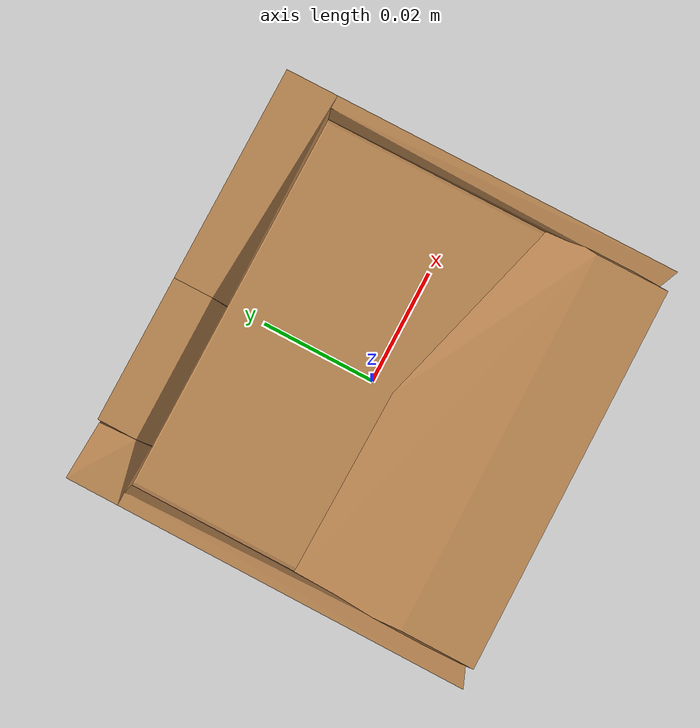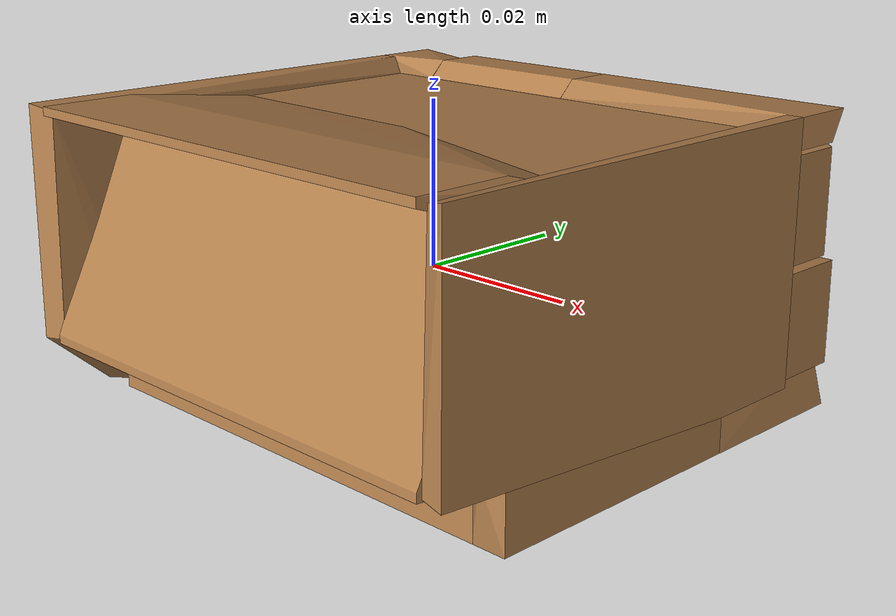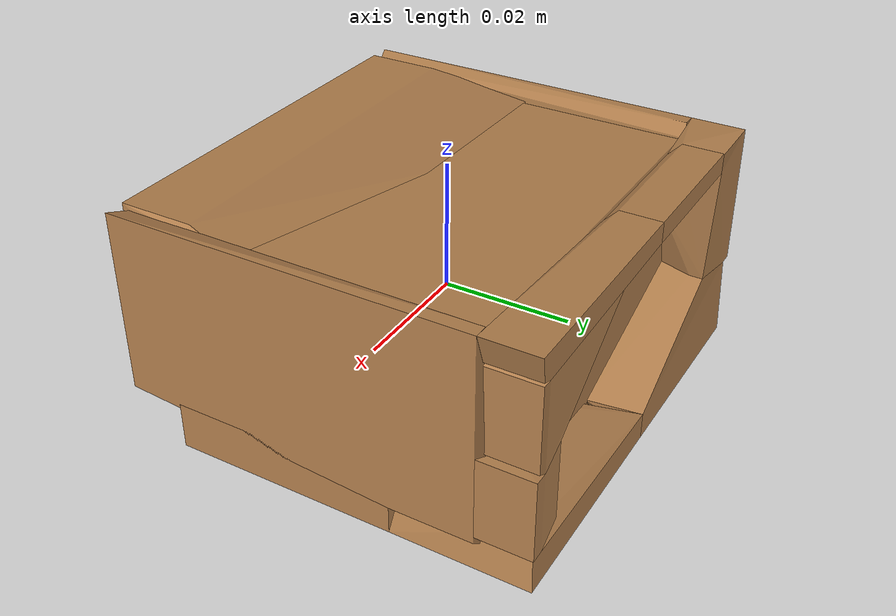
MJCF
<mujoco model="shapenet23-0">
  <asset>
    <mesh file="meshes/shapenet23-0/shapenet23-0_0.stl" name="shapenet23-0_0" scale="0.1 0.1 0.1"/>
    <mesh file="meshes/shapenet23-0/shapenet23-0_1.stl" name="shapenet23-0_1" scale="0.1 0.1 0.1"/>
    <mesh file="meshes/shapenet23-0/shapenet23-0_2.stl" name="shapenet23-0_2" scale="0.1 0.1 0.1"/>
    <mesh file="meshes/shapenet23-0/shapenet23-0_3.stl" name="shapenet23-0_3" scale="0.1 0.1 0.1"/>
    <mesh file="meshes/shapenet23-0/shapenet23-0_4.stl" name="shapenet23-0_4" scale="0.1 0.1 0.1"/>
    <mesh file="meshes/shapenet23-0/shapenet23-0_5.stl" name="shapenet23-0_5" scale="0.1 0.1 0.1"/>
    <mesh file="meshes/shapenet23-0/shapenet23-0_6.stl" name="shapenet23-0_6" scale="0.1 0.1 0.1"/>
    <mesh file="meshes/shapenet23-0/shapenet23-0_7.stl" name="shapenet23-0_7" scale="0.1 0.1 0.1"/>
    <mesh file="meshes/shapenet23-0/shapenet23-0_8.stl" name="shapenet23-0_8" scale="0.1 0.1 0.1"/>
    <mesh file="meshes/shapenet23-0/shapenet23-0_9.stl" name="shapenet23-0_9" scale="0.1 0.1 0.1"/>
    <mesh file="meshes/shapenet23-0/shapenet23-0_10.stl" name="shapenet23-0_10" scale="0.1 0.1 0.1"/>
    <mesh file="meshes/shapenet23-0/shapenet23-0_11.stl" name="shapenet23-0_11" scale="0.1 0.1 0.1"/>
    <mesh file="meshes/shapenet23-0/shapenet23-0_12.stl" name="shapenet23-0_12" scale="0.1 0.1 0.1"/>
    <mesh file="meshes/shapenet23-0/shapenet23-0_13.stl" name="shapenet23-0_13" scale="0.1 0.1 0.1"/>
    <mesh file="meshes/shapenet23-0/shapenet23-0_14.stl" name="shapenet23-0_14" scale="0.1 0.1 0.1"/>
    <mesh file="meshes/shapenet23-0/shapenet23-0_15.stl" name="shapenet23-0_15" scale="0.1 0.1 0.1"/>
    <mesh file="meshes/shapenet23-0/shapenet23-0_16.stl" name="shapenet23-0_16" scale="0.1 0.1 0.1"/>
    <mesh file="meshes/shapenet23-0/shapenet23-0_17.stl" name="shapenet23-0_17" scale="0.1 0.1 0.1"/>
    <mesh file="meshes/shapenet23-0/shapenet23-0_18.stl" name="shapenet23-0_18" scale="0.1 0.1 0.1"/>
    <mesh file="meshes/shapenet23-0/shapenet23-0_19.stl" name="shapenet23-0_19" scale="0.1 0.1 0.1"/>
    <texture file="../textures/dark-wood.png" type="2d" name="tex-darkwood"/>
    <material name="darkwood" reflectance="0.7" texrepeat="30 25" texture="tex-darkwood" texuniform="true"/>
  </asset>
  <worldbody>
    <body>
      <body name="collision">
        <geom pos="0 0 0" mesh="shapenet23-0_0" type="mesh" solimp="0.998 0.998 0.001" solref="0.001 1" density="100" friction="0.95 0.3 0.1" material="darkwood" group="1" condim="4"/>
        <geom pos="0 0 0" mesh="shapenet23-0_1" type="mesh" solimp="0.998 0.998 0.001" solref="0.001 1" density="100" friction="0.95 0.3 0.1" material="darkwood" group="1" condim="4"/>
        <geom pos="0 0 0" mesh="shapenet23-0_2" type="mesh" solimp="0.998 0.998 0.001" solref="0.001 1" density="100" friction="0.95 0.3 0.1" material="darkwood" group="1" condim="4"/>
        <geom pos="0 0 0" mesh="shapenet23-0_3" type="mesh" solimp="0.998 0.998 0.001" solref="0.001 1" density="100" friction="0.95 0.3 0.1" material="darkwood" group="1" condim="4"/>
        <geom pos="0 0 0" mesh="shapenet23-0_4" type="mesh" solimp="0.998 0.998 0.001" solref="0.001 1" density="100" friction="0.95 0.3 0.1" material="darkwood" group="1" condim="4"/>
        <geom pos="0 0 0" mesh="shapenet23-0_5" type="mesh" solimp="0.998 0.998 0.001" solref="0.001 1" density="100" friction="0.95 0.3 0.1" material="darkwood" group="1" condim="4"/>
        <geom pos="0 0 0" mesh="shapenet23-0_6" type="mesh" solimp="0.998 0.998 0.001" solref="0.001 1" density="100" friction="0.95 0.3 0.1" material="darkwood" group="1" condim="4"/>
        <geom pos="0 0 0" mesh="shapenet23-0_7" type="mesh" solimp="0.998 0.998 0.001" solref="0.001 1" density="100" friction="0.95 0.3 0.1" material="darkwood" group="1" condim="4"/>
        <geom pos="0 0 0" mesh="shapenet23-0_8" type="mesh" solimp="0.998 0.998 0.001" solref="0.001 1" density="100" friction="0.95 0.3 0.1" material="darkwood" group="1" condim="4"/>
        <geom pos="0 0 0" mesh="shapenet23-0_9" type="mesh" solimp="0.998 0.998 0.001" solref="0.001 1" density="100" friction="0.95 0.3 0.1" material="darkwood" group="1" condim="4"/>
        <geom pos="0 0 0" mesh="shapenet23-0_10" type="mesh" solimp="0.998 0.998 0.001" solref="0.001 1" density="100" friction="0.95 0.3 0.1" material="darkwood" group="1" condim="4"/>
        <geom pos="0 0 0" mesh="shapenet23-0_11" type="mesh" solimp="0.998 0.998 0.001" solref="0.001 1" density="100" friction="0.95 0.3 0.1" material="darkwood" group="1" condim="4"/>
        <geom pos="0 0 0" mesh="shapenet23-0_12" type="mesh" solimp="0.998 0.998 0.001" solref="0.001 1" density="100" friction="0.95 0.3 0.1" material="darkwood" group="1" condim="4"/>
        <geom pos="0 0 0" mesh="shapenet23-0_13" type="mesh" solimp="0.998 0.998 0.001" solref="0.001 1" density="100" friction="0.95 0.3 0.1" material="darkwood" group="1" condim="4"/>
        <geom pos="0 0 0" mesh="shapenet23-0_14" type="mesh" solimp="0.998 0.998 0.001" solref="0.001 1" density="100" friction="0.95 0.3 0.1" material="darkwood" group="1" condim="4"/>
        <geom pos="0 0 0" mesh="shapenet23-0_15" type="mesh" solimp="0.998 0.998 0.001" solref="0.001 1" density="100" friction="0.95 0.3 0.1" material="darkwood" group="1" condim="4"/>
        <geom pos="0 0 0" mesh="shapenet23-0_16" type="mesh" solimp="0.998 0.998 0.001" solref="0.001 1" density="100" friction="0.95 0.3 0.1" material="darkwood" group="1" condim="4"/>
        <geom pos="0 0 0" mesh="shapenet23-0_17" type="mesh" solimp="0.998 0.998 0.001" solref="0.001 1" density="100" friction="0.95 0.3 0.1" material="darkwood" group="1" condim="4"/>
        <geom pos="0 0 0" mesh="shapenet23-0_18" type="mesh" solimp="0.998 0.998 0.001" solref="0.001 1" density="100" friction="0.95 0.3 0.1" material="darkwood" group="1" condim="4"/>
        <geom pos="0 0 0" mesh="shapenet23-0_19" type="mesh" solimp="0.998 0.998 0.001" solref="0.001 1" density="100" friction="0.95 0.3 0.1" material="darkwood" group="1" condim="4"/>
      </body>
      <body name="visual">
        <geom pos="0 0 0" mesh="shapenet23-0_0" type="mesh" rgba="0 1 0 1" conaffinity="0" contype="0" group="0" mass="0.0001"/>
        <geom pos="0 0 0" mesh="shapenet23-0_1" type="mesh" rgba="0 1 0 1" conaffinity="0" contype="0" group="0" mass="0.0001"/>
        <geom pos="0 0 0" mesh="shapenet23-0_2" type="mesh" rgba="0 1 0 1" conaffinity="0" contype="0" group="0" mass="0.0001"/>
        <geom pos="0 0 0" mesh="shapenet23-0_3" type="mesh" rgba="0 1 0 1" conaffinity="0" contype="0" group="0" mass="0.0001"/>
        <geom pos="0 0 0" mesh="shapenet23-0_4" type="mesh" rgba="0 1 0 1" conaffinity="0" contype="0" group="0" mass="0.0001"/>
        <geom pos="0 0 0" mesh="shapenet23-0_5" type="mesh" rgba="0 1 0 1" conaffinity="0" contype="0" group="0" mass="0.0001"/>
        <geom pos="0 0 0" mesh="shapenet23-0_6" type="mesh" rgba="0 1 0 1" conaffinity="0" contype="0" group="0" mass="0.0001"/>
        <geom pos="0 0 0" mesh="shapenet23-0_7" type="mesh" rgba="0 1 0 1" conaffinity="0" contype="0" group="0" mass="0.0001"/>
        <geom pos="0 0 0" mesh="shapenet23-0_8" type="mesh" rgba="0 1 0 1" conaffinity="0" contype="0" group="0" mass="0.0001"/>
        <geom pos="0 0 0" mesh="shapenet23-0_9" type="mesh" rgba="0 1 0 1" conaffinity="0" contype="0" group="0" mass="0.0001"/>
        <geom pos="0 0 0" mesh="shapenet23-0_10" type="mesh" rgba="0 1 0 1" conaffinity="0" contype="0" group="0" mass="0.0001"/>
        <geom pos="0 0 0" mesh="shapenet23-0_11" type="mesh" rgba="0 1 0 1" conaffinity="0" contype="0" group="0" mass="0.0001"/>
        <geom pos="0 0 0" mesh="shapenet23-0_12" type="mesh" rgba="0 1 0 1" conaffinity="0" contype="0" group="0" mass="0.0001"/>
        <geom pos="0 0 0" mesh="shapenet23-0_13" type="mesh" rgba="0 1 0 1" conaffinity="0" contype="0" group="0" mass="0.0001"/>
        <geom pos="0 0 0" mesh="shapenet23-0_14" type="mesh" rgba="0 1 0 1" conaffinity="0" contype="0" group="0" mass="0.0001"/>
        <geom pos="0 0 0" mesh="shapenet23-0_15" type="mesh" rgba="0 1 0 1" conaffinity="0" contype="0" group="0" mass="0.0001"/>
        <geom pos="0 0 0" mesh="shapenet23-0_16" type="mesh" rgba="0 1 0 1" conaffinity="0" contype="0" group="0" mass="0.0001"/>
        <geom pos="0 0 0" mesh="shapenet23-0_17" type="mesh" rgba="0 1 0 1" conaffinity="0" contype="0" group="0" mass="0.0001"/>
        <geom pos="0 0 0" mesh="shapenet23-0_18" type="mesh" rgba="0 1 0 1" conaffinity="0" contype="0" group="0" mass="0.0001"/>
        <geom pos="0 0 0" mesh="shapenet23-0_19" type="mesh" rgba="0 1 0 1" conaffinity="0" contype="0" group="0" mass="0.0001"/>
      </body>
      <site rgba="0 0 0 0" size="0.005" pos="0 0 -0.06" name="bottom_site"/>
      <site rgba="0 0 0 0" size="0.005" pos="0 0 0.04" name="top_site"/>
      <site rgba="0 0 0 0" size="0.005" pos="0.025 0.025 0" name="horizontal_radius_site"/>
    </body>
  </worldbody>
</mujoco>
